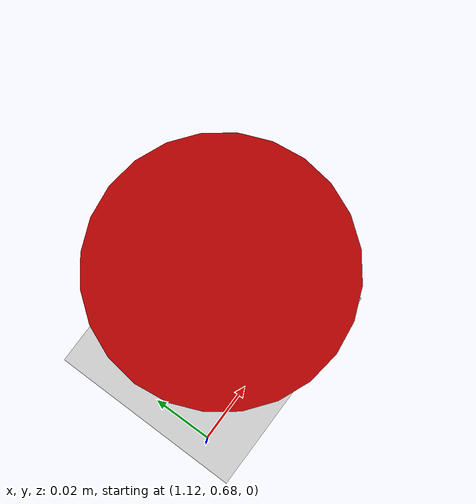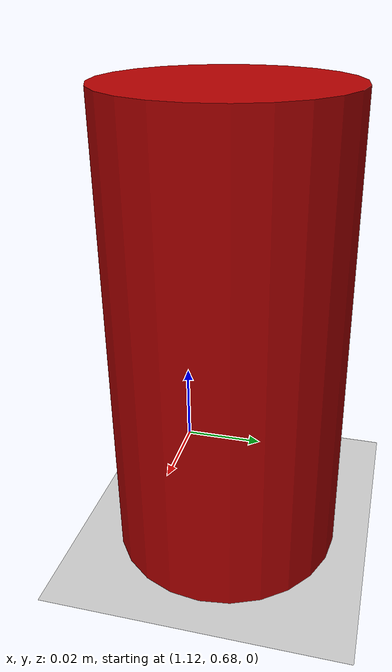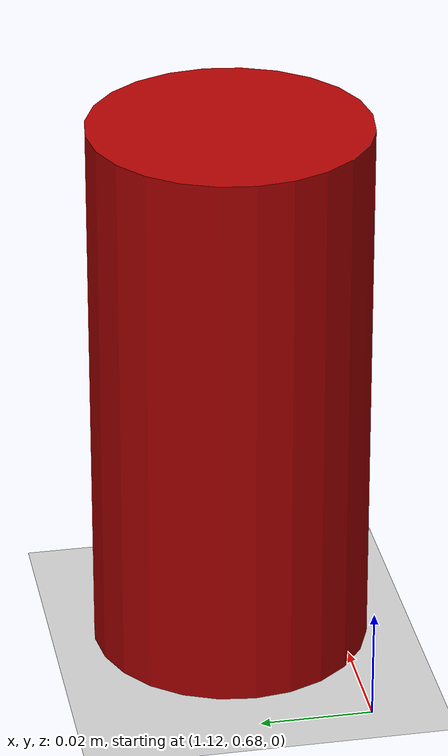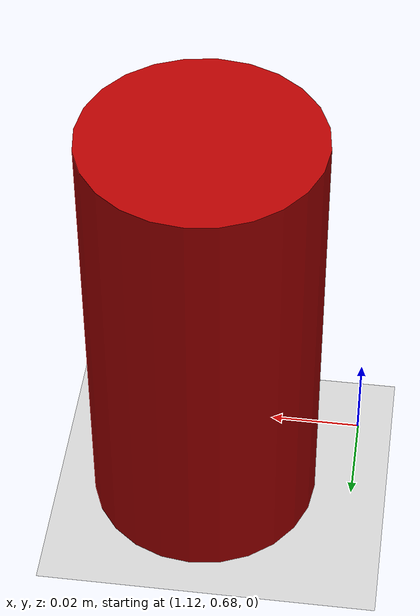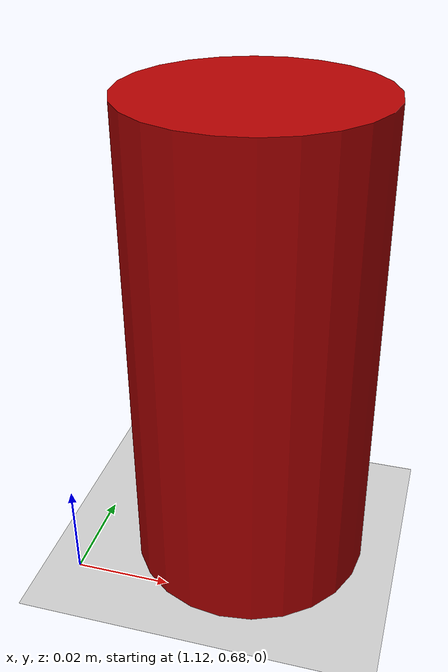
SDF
<sdf version="1.7">
 <world name="default">
  <light name="sun" type="directional">
   <pose>0 0 10 0 -0 0</pose>
   <diffuse>0.8 0.8 0.8 1</diffuse>
   <specular>0.2 0.2 0.2 1</specular>
   <attenuation>
    <range>1000</range>
    <constant>0.9</constant>
    <linear>0.01</linear>
    <quadratic>0.001</quadratic>
   </attenuation>
   <direction>-0.5 0.1 -0.9</direction>
   <spot><inner_angle>0</inner_angle><outer_angle>0</outer_angle><falloff>0</falloff></spot>
  </light>
  <model name="ground_plane">
   <static>1</static>
   <link name="link">
    <collision name="collision">
     <geometry><plane><normal>0 0 1</normal><size>100 100</size></plane></geometry>
     <surface>
      <contact><collide_bitmask>65535</collide_bitmask></contact>
      <friction><ode><mu>100</mu><mu2>50</mu2></ode></friction>
     </surface>
    </collision>
    <visual name="visual">
     <cast_shadows>0</cast_shadows>
     <geometry><plane><normal>0 0 1</normal><size>100 100</size></plane></geometry>
     <material>
      <script><uri>file://media/materials/scripts/gazebo.material</uri><name>Gazebo/Grey</name></script>
     </material>
    </visual>
   </link>
  </model>
  <gravity>0 0 -9.8</gravity>
  <magnetic_field>6e-06 2.3e-05 -4.2e-05</magnetic_field>
  <atmosphere type="adiabatic"/>
  <physics type="ode">
   <max_step_size>0.001</max_step_size>
   <real_time_factor>1</real_time_factor>
   <real_time_update_rate>1000</real_time_update_rate>
  </physics>
  <scene><ambient>0.4 0.4 0.4 1</ambient><background>0.7 0.7 0.7 1</background><shadows>1</shadows></scene>
  <spherical_coordinates>
   <surface_model>EARTH_WGS84</surface_model>
   <latitude_deg>0</latitude_deg>
   <longitude_deg>0</longitude_deg>
   <elevation>0</elevation>
   <heading_deg>0</heading_deg>
  </spherical_coordinates>
  <model name="can1">
   <link name="link">
    <inertial>
     <mass>0.013</mass>
     <inertia>
      <ixx>0.00088662</ixx>
      <ixy>0</ixy>
      <ixz>0</ixz>
      <iyy>0.00088662</iyy>
      <iyz>0</iyz>
      <izz>0.00025027</izz>
     </inertia>
    </inertial>
    <pose>0 0 0.05 0 -0 0</pose>
    <visual name="visual">
     <geometry><cylinder><radius>0.025</radius><length>0.1</length></cylinder></geometry>
     <material>
      <script><name>Gazebo/Grey</name><uri>file://media/materials/scripts/gazebo.material</uri></script>
      <shader type="pixel"><normal_map>__default__</normal_map></shader>
      <ambient>1 0 0 1</ambient>
      <diffuse>0.7 0 0 1</diffuse>
      <specular>0.01 0.01 0.01 1</specular>
      <emissive>0 0 0 1</emissive>
     </material>
    </visual>
    <collision name="collision_2">
     <pose>0 0 -0.045 0 -0 0</pose>
     <geometry><cylinder><radius>0.025</radius><length>0.01</length></cylinder></geometry>
     <surface>
      <friction>
       <ode><mu>1</mu><mu2>1</mu2><fdir1>0 0 0</fdir1><slip1>0</slip1><slip2>0</slip2></ode>
       <torsional>
        <coefficient>1</coefficient>
        <patch_radius>0</patch_radius>
        <surface_radius>0</surface_radius>
        <use_patch_radius>1</use_patch_radius>
        <ode><slip>0</slip></ode>
       </torsional>
      </friction>
      <bounce><restitution_coefficient>0</restitution_coefficient><threshold>1e+06</threshold></bounce>
      <contact>
       <collide_without_contact>0</collide_without_contact>
       <collide_without_contact_bitmask>1</collide_without_contact_bitmask>
       <collide_bitmask>1</collide_bitmask>
       <ode>
        <soft_cfm>0</soft_cfm>
        <soft_erp>0.2</soft_erp>
        <kp>1e+13</kp>
        <kd>1</kd>
        <max_vel>0.01</max_vel>
        <min_depth>0</min_depth>
       </ode>
       <bullet>
        <split_impulse>1</split_impulse>
        <split_impulse_penetration_threshold>-0.01</split_impulse_penetration_threshold>
        <soft_cfm>0</soft_cfm>
        <soft_erp>0.2</soft_erp>
        <kp>1e+13</kp>
        <kd>1</kd>
       </bullet>
      </contact>
     </surface>
    </collision>
    <collision name="collision_1">
     <geometry><cylinder><radius>0.005</radius><length>0.08</length></cylinder></geometry>
     <surface>
      <friction>
       <ode><mu>1</mu><mu2>1</mu2><fdir1>0 0 0</fdir1><slip1>0</slip1><slip2>0</slip2></ode>
       <torsional>
        <coefficient>1</coefficient>
        <patch_radius>0</patch_radius>
        <surface_radius>0</surface_radius>
        <use_patch_radius>1</use_patch_radius>
        <ode><slip>0</slip></ode>
       </torsional>
      </friction>
      <bounce><restitution_coefficient>0</restitution_coefficient><threshold>1e+06</threshold></bounce>
      <contact>
       <collide_without_contact>0</collide_without_contact>
       <collide_without_contact_bitmask>1</collide_without_contact_bitmask>
       <collide_bitmask>1</collide_bitmask>
       <ode>
        <soft_cfm>0</soft_cfm>
        <soft_erp>0.2</soft_erp>
        <kp>1e+13</kp>
        <kd>1</kd>
        <max_vel>0.01</max_vel>
        <min_depth>0</min_depth>
       </ode>
       <bullet>
        <split_impulse>1</split_impulse>
        <split_impulse_penetration_threshold>-0.01</split_impulse_penetration_threshold>
        <soft_cfm>0</soft_cfm>
        <soft_erp>0.2</soft_erp>
        <kp>1e+13</kp>
        <kd>1</kd>
       </bullet>
      </contact>
     </surface>
    </collision>
    <collision name="collision">
     <pose>0 0 0.045 0 -0 0</pose>
     <geometry><cylinder><radius>0.025</radius><length>0.01</length></cylinder></geometry>
     <surface>
      <friction>
       <ode><mu>1</mu><mu2>1</mu2><fdir1>0 0 0</fdir1><slip1>0</slip1><slip2>0</slip2></ode>
       <torsional>
        <coefficient>1</coefficient>
        <patch_radius>0</patch_radius>
        <surface_radius>0</surface_radius>
        <use_patch_radius>1</use_patch_radius>
        <ode><slip>0</slip></ode>
       </torsional>
      </friction>
      <bounce><restitution_coefficient>0</restitution_coefficient><threshold>1e+06</threshold></bounce>
      <contact>
       <collide_without_contact>0</collide_without_contact>
       <collide_without_contact_bitmask>1</collide_without_contact_bitmask>
       <collide_bitmask>1</collide_bitmask>
       <ode>
        <soft_cfm>0</soft_cfm>
        <soft_erp>0.2</soft_erp>
        <kp>1e+13</kp>
        <kd>1</kd>
        <max_vel>0.01</max_vel>
        <min_depth>0</min_depth>
       </ode>
       <bullet>
        <split_impulse>1</split_impulse>
        <split_impulse_penetration_threshold>-0.01</split_impulse_penetration_threshold>
        <soft_cfm>0</soft_cfm>
        <soft_erp>0.2</soft_erp>
        <kp>1e+13</kp>
        <kd>1</kd>
       </bullet>
      </contact>
     </surface>
    </collision>
   </link>
   <static>0</static>
   <pose>1.15331 0.699315 0 0 -0 0</pose>
  </model>
 </world>
</sdf>
